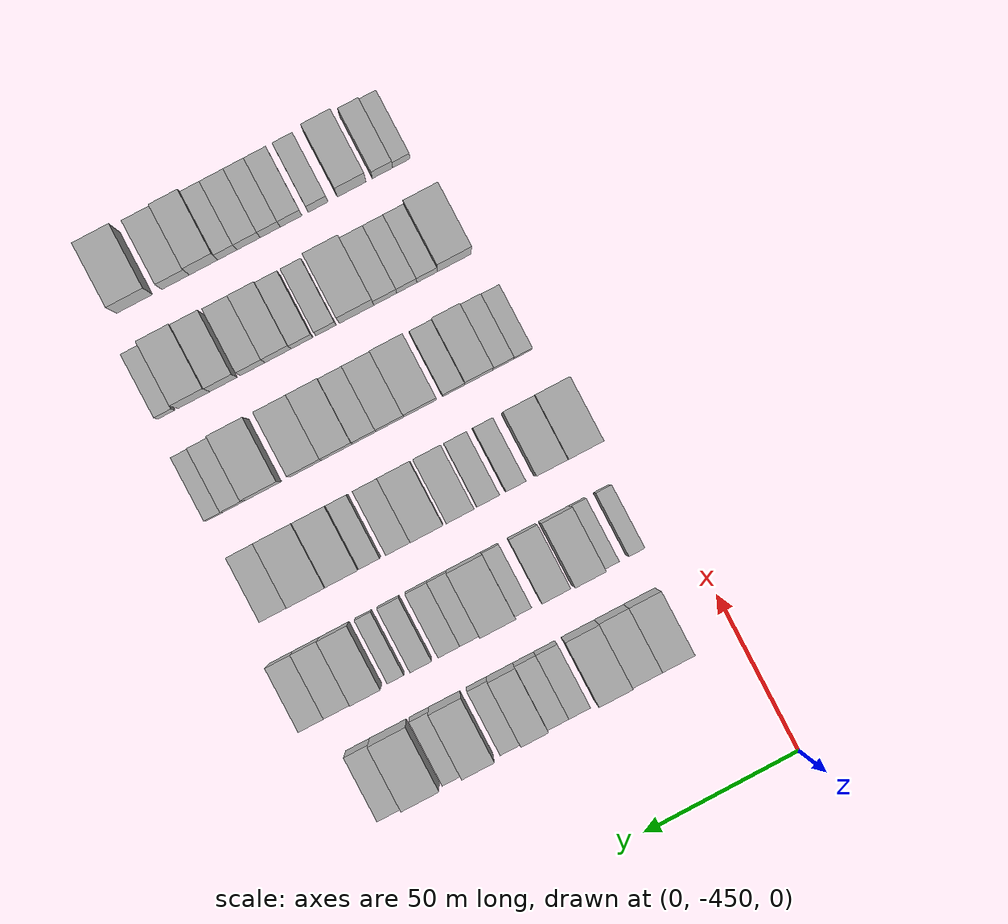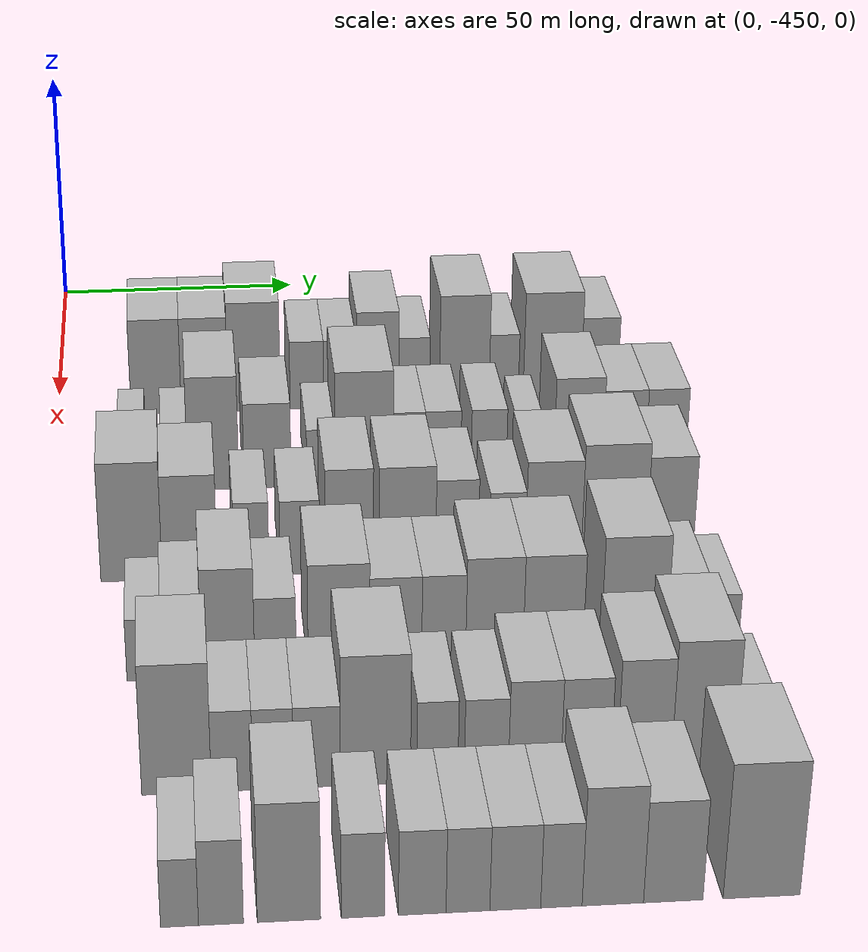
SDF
<sdf version="1.6">
 <world name="default">
  <model name="building_14">
   <static>1</static>
   <pose>50.0000 -430.2669 0 0.000000 0.000000 0.000000</pose>
   <link name="link">
    <pose>0 0 10.50 0 0 0</pose>
    <collision name="collision"><geometry><box><size>20.0000 10.1152 21.0000</size></box></geometry></collision>
    <visual name="visual">
     <cast_shadows>0</cast_shadows>
     <geometry><box><size>20.0000 10.1152 21.0000</size></box></geometry>
     <material>
      <script>
       <uri>model://HANNAS_wall/materials/scripts</uri>
       <uri>model://HANNAS_wall/materials/textures</uri>
       <name>vrc/HANNAS_wall</name>
      </script>
     </material>
    </visual>
   </link>
  </model>
  <model name="building_15">
   <static>1</static>
   <pose>50.0000 -420.4977 0 0.000000 0.000000 0.000000</pose>
   <link name="link">
    <pose>0 0 10.50 0 0 0</pose>
    <collision name="collision"><geometry><box><size>20.0000 9.4233 21.0000</size></box></geometry></collision>
    <visual name="visual">
     <cast_shadows>0</cast_shadows>
     <geometry><box><size>20.0000 9.4233 21.0000</size></box></geometry>
     <material>
      <script>
       <uri>model://HANNAS_wall/materials/scripts</uri>
       <uri>model://HANNAS_wall/materials/textures</uri>
       <name>vrc/HANNAS_wall</name>
      </script>
     </material>
    </visual>
   </link>
  </model>
  <model name="building_16">
   <static>1</static>
   <pose>50.0000 -410.4962 0 0.000000 0.000000 0.000000</pose>
   <link name="link">
    <pose>0 0 12.00 0 0 0</pose>
    <collision name="collision"><geometry><box><size>20.0000 10.5796 24.0000</size></box></geometry></collision>
    <visual name="visual">
     <cast_shadows>0</cast_shadows>
     <geometry><box><size>20.0000 10.5796 24.0000</size></box></geometry>
     <material>
      <script>
       <uri>model://HANNAS_wall/materials/scripts</uri>
       <uri>model://HANNAS_wall/materials/textures</uri>
       <name>vrc/HANNAS_wall</name>
      </script>
     </material>
    </visual>
   </link>
  </model>
  <model name="building_17">
   <static>1</static>
   <pose>50.0000 -399.8020 0 0.000000 0.000000 0.000000</pose>
   <link name="link">
    <pose>0 0 7.50 0 0 0</pose>
    <collision name="collision"><geometry><box><size>20.0000 6.8087 15.0000</size></box></geometry></collision>
    <visual name="visual">
     <cast_shadows>0</cast_shadows>
     <geometry><box><size>20.0000 6.8087 15.0000</size></box></geometry>
     <material>
      <script>
       <uri>model://HANNAS_wall/materials/scripts</uri>
       <uri>model://HANNAS_wall/materials/textures</uri>
       <name>vrc/HANNAS_wall</name>
      </script>
     </material>
    </visual>
   </link>
  </model>
  <model name="building_18">
   <static>1</static>
   <pose>50.0000 -393.0594 0 0.000000 0.000000 0.000000</pose>
   <link name="link">
    <pose>0 0 7.50 0 0 0</pose>
    <collision name="collision"><geometry><box><size>20.0000 6.6766 15.0000</size></box></geometry></collision>
    <visual name="visual">
     <cast_shadows>0</cast_shadows>
     <geometry><box><size>20.0000 6.6766 15.0000</size></box></geometry>
     <material>
      <script>
       <uri>model://HANNAS_wall/materials/scripts</uri>
       <uri>model://HANNAS_wall/materials/textures</uri>
       <name>vrc/HANNAS_wall</name>
      </script>
     </material>
    </visual>
   </link>
  </model>
  <model name="building_19">
   <static>1</static>
   <pose>50.0000 -385.4042 0 0.000000 0.000000 0.000000</pose>
   <link name="link">
    <pose>0 0 10.50 0 0 0</pose>
    <collision name="collision"><geometry><box><size>20.0000 8.6337 21.0000</size></box></geometry></collision>
    <visual name="visual">
     <cast_shadows>0</cast_shadows>
     <geometry><box><size>20.0000 8.6337 21.0000</size></box></geometry>
     <material>
      <script>
       <uri>model://HANNAS_wall/materials/scripts</uri>
       <uri>model://HANNAS_wall/materials/textures</uri>
       <name>vrc/HANNAS_wall</name>
      </script>
     </material>
    </visual>
   </link>
  </model>
  <model name="building_20">
   <static>1</static>
   <pose>50.0000 -377.9456 0 0.000000 0.000000 0.000000</pose>
   <link name="link">
    <pose>0 0 7.50 0 0 0</pose>
    <collision name="collision"><geometry><box><size>20.0000 6.2836 15.0000</size></box></geometry></collision>
    <visual name="visual">
     <cast_shadows>0</cast_shadows>
     <geometry><box><size>20.0000 6.2836 15.0000</size></box></geometry>
     <material>
      <script>
       <uri>model://HANNAS_wall/materials/scripts</uri>
       <uri>model://HANNAS_wall/materials/textures</uri>
       <name>vrc/HANNAS_wall</name>
      </script>
     </material>
    </visual>
   </link>
  </model>
  <model name="building_21">
   <static>1</static>
   <pose>50.0000 -367.7243 0 0.000000 0.000000 0.000000</pose>
   <link name="link">
    <pose>0 0 12.00 0 0 0</pose>
    <collision name="collision"><geometry><box><size>20.0000 10.1591 24.0000</size></box></geometry></collision>
    <visual name="visual">
     <cast_shadows>0</cast_shadows>
     <geometry><box><size>20.0000 10.1591 24.0000</size></box></geometry>
     <material>
      <script>
       <uri>model://HANNAS_wall/materials/scripts</uri>
       <uri>model://HANNAS_wall/materials/textures</uri>
       <name>vrc/HANNAS_wall</name>
      </script>
     </material>
    </visual>
   </link>
  </model>
  <model name="building_22">
   <static>1</static>
   <pose>50.0000 -359.6433 0 0.000000 0.000000 0.000000</pose>
   <link name="link">
    <pose>0 0 7.50 0 0 0</pose>
    <collision name="collision"><geometry><box><size>20.0000 6.0029 15.0000</size></box></geometry></collision>
    <visual name="visual">
     <cast_shadows>0</cast_shadows>
     <geometry><box><size>20.0000 6.0029 15.0000</size></box></geometry>
     <material>
      <script>
       <uri>model://HANNAS_wall/materials/scripts</uri>
       <uri>model://HANNAS_wall/materials/textures</uri>
       <name>vrc/HANNAS_wall</name>
      </script>
     </material>
    </visual>
   </link>
  </model>
  <model name="building_23">
   <static>1</static>
   <pose>50.0000 -349.7255 0 0.000000 0.000000 0.000000</pose>
   <link name="link">
    <pose>0 0 12.00 0 0 0</pose>
    <collision name="collision"><geometry><box><size>20.0000 11.8326 24.0000</size></box></geometry></collision>
    <visual name="visual">
     <cast_shadows>0</cast_shadows>
     <geometry><box><size>20.0000 11.8326 24.0000</size></box></geometry>
     <material>
      <script>
       <uri>model://HANNAS_wall/materials/scripts</uri>
       <uri>model://HANNAS_wall/materials/textures</uri>
       <name>vrc/HANNAS_wall</name>
      </script>
     </material>
    </visual>
   </link>
  </model>
  <model name="building_24">
   <static>1</static>
   <pose>50.0000 -340.0183 0 0.000000 0.000000 0.000000</pose>
   <link name="link">
    <pose>0 0 9.00 0 0 0</pose>
    <collision name="collision"><geometry><box><size>20.0000 7.5818 18.0000</size></box></geometry></collision>
    <visual name="visual">
     <cast_shadows>0</cast_shadows>
     <geometry><box><size>20.0000 7.5818 18.0000</size></box></geometry>
     <material>
      <script>
       <uri>model://HANNAS_wall/materials/scripts</uri>
       <uri>model://HANNAS_wall/materials/textures</uri>
       <name>vrc/HANNAS_wall</name>
      </script>
     </material>
    </visual>
   </link>
  </model>
  <model name="building_134">
   <static>1</static>
   <pose>82.0000 -434.8754 0 0.000000 0.000000 0.000000</pose>
   <link name="link">
    <pose>0 0 6.00 0 0 0</pose>
    <collision name="collision"><geometry><box><size>20.0000 5.0662 12.0000</size></box></geometry></collision>
    <visual name="visual">
     <cast_shadows>0</cast_shadows>
     <geometry><box><size>20.0000 5.0662 12.0000</size></box></geometry>
     <material>
      <script>
       <uri>model://HANNAS_wall/materials/scripts</uri>
       <uri>model://HANNAS_wall/materials/textures</uri>
       <name>vrc/HANNAS_wall</name>
      </script>
     </material>
    </visual>
   </link>
  </model>
  <model name="building_135">
   <static>1</static>
   <pose>82.0000 -426.8634 0 0.000000 0.000000 0.000000</pose>
   <link name="link">
    <pose>0 0 6.00 0 0 0</pose>
    <collision name="collision"><geometry><box><size>20.0000 4.9578 12.0000</size></box></geometry></collision>
    <visual name="visual">
     <cast_shadows>0</cast_shadows>
     <geometry><box><size>20.0000 4.9578 12.0000</size></box></geometry>
     <material>
      <script>
       <uri>model://HANNAS_wall/materials/scripts</uri>
       <uri>model://HANNAS_wall/materials/textures</uri>
       <name>vrc/HANNAS_wall</name>
      </script>
     </material>
    </visual>
   </link>
  </model>
  <model name="building_136">
   <static>1</static>
   <pose>82.0000 -419.5445 0 0.000000 0.000000 0.000000</pose>
   <link name="link">
    <pose>0 0 12.00 0 0 0</pose>
    <collision name="collision"><geometry><box><size>20.0000 9.6800 24.0000</size></box></geometry></collision>
    <visual name="visual">
     <cast_shadows>0</cast_shadows>
     <geometry><box><size>20.0000 9.6800 24.0000</size></box></geometry>
     <material>
      <script>
       <uri>model://HANNAS_wall/materials/scripts</uri>
       <uri>model://HANNAS_wall/materials/textures</uri>
       <name>vrc/HANNAS_wall</name>
      </script>
     </material>
    </visual>
   </link>
  </model>
  <model name="building_137">
   <static>1</static>
   <pose>82.0000 -409.2122 0 0.000000 0.000000 0.000000</pose>
   <link name="link">
    <pose>0 0 9.00 0 0 0</pose>
    <collision name="collision"><geometry><box><size>20.0000 8.9846 18.0000</size></box></geometry></collision>
    <visual name="visual">
     <cast_shadows>0</cast_shadows>
     <geometry><box><size>20.0000 8.9846 18.0000</size></box></geometry>
     <material>
      <script>
       <uri>model://HANNAS_wall/materials/scripts</uri>
       <uri>model://HANNAS_wall/materials/textures</uri>
       <name>vrc/HANNAS_wall</name>
      </script>
     </material>
    </visual>
   </link>
  </model>
  <model name="building_138">
   <static>1</static>
   <pose>82.0000 -399.0163 0 0.000000 0.000000 0.000000</pose>
   <link name="link">
    <pose>0 0 6.00 0 0 0</pose>
    <collision name="collision"><geometry><box><size>20.0000 5.4072 12.0000</size></box></geometry></collision>
    <visual name="visual">
     <cast_shadows>0</cast_shadows>
     <geometry><box><size>20.0000 5.4072 12.0000</size></box></geometry>
     <material>
      <script>
       <uri>model://HANNAS_wall/materials/scripts</uri>
       <uri>model://HANNAS_wall/materials/textures</uri>
       <name>vrc/HANNAS_wall</name>
      </script>
     </material>
    </visual>
   </link>
  </model>
  <model name="building_139">
   <static>1</static>
   <pose>82.0000 -390.7348 0 0.000000 0.000000 0.000000</pose>
   <link name="link">
    <pose>0 0 12.00 0 0 0</pose>
    <collision name="collision"><geometry><box><size>20.0000 11.1557 24.0000</size></box></geometry></collision>
    <visual name="visual">
     <cast_shadows>0</cast_shadows>
     <geometry><box><size>20.0000 11.1557 24.0000</size></box></geometry>
     <material>
      <script>
       <uri>model://HANNAS_wall/materials/scripts</uri>
       <uri>model://HANNAS_wall/materials/textures</uri>
       <name>vrc/HANNAS_wall</name>
      </script>
     </material>
    </visual>
   </link>
  </model>
  <model name="building_140">
   <static>1</static>
   <pose>82.0000 -382.0754 0 0.000000 0.000000 0.000000</pose>
   <link name="link">
    <pose>0 0 7.50 0 0 0</pose>
    <collision name="collision"><geometry><box><size>20.0000 6.1631 15.0000</size></box></geometry></collision>
    <visual name="visual">
     <cast_shadows>0</cast_shadows>
     <geometry><box><size>20.0000 6.1631 15.0000</size></box></geometry>
     <material>
      <script>
       <uri>model://HANNAS_wall/materials/scripts</uri>
       <uri>model://HANNAS_wall/materials/textures</uri>
       <name>vrc/HANNAS_wall</name>
      </script>
     </material>
    </visual>
   </link>
  </model>
  <model name="building_141">
   <static>1</static>
   <pose>82.0000 -375.5727 0 0.000000 0.000000 0.000000</pose>
   <link name="link">
    <pose>0 0 7.50 0 0 0</pose>
    <collision name="collision"><geometry><box><size>20.0000 6.8424 15.0000</size></box></geometry></collision>
    <visual name="visual">
     <cast_shadows>0</cast_shadows>
     <geometry><box><size>20.0000 6.8424 15.0000</size></box></geometry>
     <material>
      <script>
       <uri>model://HANNAS_wall/materials/scripts</uri>
       <uri>model://HANNAS_wall/materials/textures</uri>
       <name>vrc/HANNAS_wall</name>
      </script>
     </material>
    </visual>
   </link>
  </model>
  <model name="building_142">
   <static>1</static>
   <pose>82.0000 -366.7478 0 0.000000 0.000000 0.000000</pose>
   <link name="link">
    <pose>0 0 7.50 0 0 0</pose>
    <collision name="collision"><geometry><box><size>20.0000 6.8074 15.0000</size></box></geometry></collision>
    <visual name="visual">
     <cast_shadows>0</cast_shadows>
     <geometry><box><size>20.0000 6.8074 15.0000</size></box></geometry>
     <material>
      <script>
       <uri>model://HANNAS_wall/materials/scripts</uri>
       <uri>model://HANNAS_wall/materials/textures</uri>
       <name>vrc/HANNAS_wall</name>
      </script>
     </material>
    </visual>
   </link>
  </model>
  <model name="building_143">
   <static>1</static>
   <pose>82.0000 -358.7529 0 0.000000 0.000000 0.000000</pose>
   <link name="link">
    <pose>0 0 6.00 0 0 0</pose>
    <collision name="collision"><geometry><box><size>20.0000 5.1823 12.0000</size></box></geometry></collision>
    <visual name="visual">
     <cast_shadows>0</cast_shadows>
     <geometry><box><size>20.0000 5.1823 12.0000</size></box></geometry>
     <material>
      <script>
       <uri>model://HANNAS_wall/materials/scripts</uri>
       <uri>model://HANNAS_wall/materials/textures</uri>
       <name>vrc/HANNAS_wall</name>
      </script>
     </material>
    </visual>
   </link>
  </model>
  <model name="building_144">
   <static>1</static>
   <pose>82.0000 -349.4194 0 0.000000 0.000000 0.000000</pose>
   <link name="link">
    <pose>0 0 10.50 0 0 0</pose>
    <collision name="collision"><geometry><box><size>20.0000 9.4847 21.0000</size></box></geometry></collision>
    <visual name="visual">
     <cast_shadows>0</cast_shadows>
     <geometry><box><size>20.0000 9.4847 21.0000</size></box></geometry>
     <material>
      <script>
       <uri>model://HANNAS_wall/materials/scripts</uri>
       <uri>model://HANNAS_wall/materials/textures</uri>
       <name>vrc/HANNAS_wall</name>
      </script>
     </material>
    </visual>
   </link>
  </model>
  <model name="building_145">
   <static>1</static>
   <pose>82.0000 -340.5049 0 0.000000 0.000000 0.000000</pose>
   <link name="link">
    <pose>0 0 9.00 0 0 0</pose>
    <collision name="collision"><geometry><box><size>20.0000 8.3443 18.0000</size></box></geometry></collision>
    <visual name="visual">
     <cast_shadows>0</cast_shadows>
     <geometry><box><size>20.0000 8.3443 18.0000</size></box></geometry>
     <material>
      <script>
       <uri>model://HANNAS_wall/materials/scripts</uri>
       <uri>model://HANNAS_wall/materials/textures</uri>
       <name>vrc/HANNAS_wall</name>
      </script>
     </material>
    </visual>
   </link>
  </model>
  <model name="building_146">
   <static>1</static>
   <pose>82.0000 -332.3952 0 0.000000 0.000000 0.000000</pose>
   <link name="link">
    <pose>0 0 9.00 0 0 0</pose>
    <collision name="collision"><geometry><box><size>20.0000 7.8751 18.0000</size></box></geometry></collision>
    <visual name="visual">
     <cast_shadows>0</cast_shadows>
     <geometry><box><size>20.0000 7.8751 18.0000</size></box></geometry>
     <material>
      <script>
       <uri>model://HANNAS_wall/materials/scripts</uri>
       <uri>model://HANNAS_wall/materials/textures</uri>
       <name>vrc/HANNAS_wall</name>
      </script>
     </material>
    </visual>
   </link>
  </model>
  <model name="building_256">
   <static>1</static>
   <pose>114.0000 -434.9927 0 0.000000 0.000000 0.000000</pose>
   <link name="link">
    <pose>0 0 12.00 0 0 0</pose>
    <collision name="collision"><geometry><box><size>20.0000 10.9474 24.0000</size></box></geometry></collision>
    <visual name="visual">
     <cast_shadows>0</cast_shadows>
     <geometry><box><size>20.0000 10.9474 24.0000</size></box></geometry>
     <material>
      <script>
       <uri>model://HANNAS_wall/materials/scripts</uri>
       <uri>model://HANNAS_wall/materials/textures</uri>
       <name>vrc/HANNAS_wall</name>
      </script>
     </material>
    </visual>
   </link>
  </model>
  <model name="building_257">
   <static>1</static>
   <pose>114.0000 -424.5953 0 0.000000 0.000000 0.000000</pose>
   <link name="link">
    <pose>0 0 10.50 0 0 0</pose>
    <collision name="collision"><geometry><box><size>20.0000 9.8475 21.0000</size></box></geometry></collision>
    <visual name="visual">
     <cast_shadows>0</cast_shadows>
     <geometry><box><size>20.0000 9.8475 21.0000</size></box></geometry>
     <material>
      <script>
       <uri>model://HANNAS_wall/materials/scripts</uri>
       <uri>model://HANNAS_wall/materials/textures</uri>
       <name>vrc/HANNAS_wall</name>
      </script>
     </material>
    </visual>
   </link>
  </model>
  <model name="building_258">
   <static>1</static>
   <pose>114.0000 -413.5283 0 0.000000 0.000000 0.000000</pose>
   <link name="link">
    <pose>0 0 7.50 0 0 0</pose>
    <collision name="collision"><geometry><box><size>20.0000 6.2865 15.0000</size></box></geometry></collision>
    <visual name="visual">
     <cast_shadows>0</cast_shadows>
     <geometry><box><size>20.0000 6.2865 15.0000</size></box></geometry>
     <material>
      <script>
       <uri>model://HANNAS_wall/materials/scripts</uri>
       <uri>model://HANNAS_wall/materials/textures</uri>
       <name>vrc/HANNAS_wall</name>
      </script>
     </material>
    </visual>
   </link>
  </model>
  <model name="building_259">
   <static>1</static>
   <pose>114.0000 -404.8251 0 0.000000 0.000000 0.000000</pose>
   <link name="link">
    <pose>0 0 7.50 0 0 0</pose>
    <collision name="collision"><geometry><box><size>20.0000 7.1200 15.0000</size></box></geometry></collision>
    <visual name="visual">
     <cast_shadows>0</cast_shadows>
     <geometry><box><size>20.0000 7.1200 15.0000</size></box></geometry>
     <material>
      <script>
       <uri>model://HANNAS_wall/materials/scripts</uri>
       <uri>model://HANNAS_wall/materials/textures</uri>
       <name>vrc/HANNAS_wall</name>
      </script>
     </material>
    </visual>
   </link>
  </model>
  <model name="building_260">
   <static>1</static>
   <pose>114.0000 -395.9282 0 0.000000 0.000000 0.000000</pose>
   <link name="link">
    <pose>0 0 10.50 0 0 0</pose>
    <collision name="collision"><geometry><box><size>20.0000 8.6737 21.0000</size></box></geometry></collision>
    <visual name="visual">
     <cast_shadows>0</cast_shadows>
     <geometry><box><size>20.0000 8.6737 21.0000</size></box></geometry>
     <material>
      <script>
       <uri>model://HANNAS_wall/materials/scripts</uri>
       <uri>model://HANNAS_wall/materials/textures</uri>
       <name>vrc/HANNAS_wall</name>
      </script>
     </material>
    </visual>
   </link>
  </model>
  <model name="building_261">
   <static>1</static>
   <pose>114.0000 -385.4736 0 0.000000 0.000000 0.000000</pose>
   <link name="link">
    <pose>0 0 10.50 0 0 0</pose>
    <collision name="collision"><geometry><box><size>20.0000 10.2356 21.0000</size></box></geometry></collision>
    <visual name="visual">
     <cast_shadows>0</cast_shadows>
     <geometry><box><size>20.0000 10.2356 21.0000</size></box></geometry>
     <material>
      <script>
       <uri>model://HANNAS_wall/materials/scripts</uri>
       <uri>model://HANNAS_wall/materials/textures</uri>
       <name>vrc/HANNAS_wall</name>
      </script>
     </material>
    </visual>
   </link>
  </model>
  <model name="building_262">
   <static>1</static>
   <pose>114.0000 -376.5117 0 0.000000 0.000000 0.000000</pose>
   <link name="link">
    <pose>0 0 9.00 0 0 0</pose>
    <collision name="collision"><geometry><box><size>20.0000 7.6883 18.0000</size></box></geometry></collision>
    <visual name="visual">
     <cast_shadows>0</cast_shadows>
     <geometry><box><size>20.0000 7.6883 18.0000</size></box></geometry>
     <material>
      <script>
       <uri>model://HANNAS_wall/materials/scripts</uri>
       <uri>model://HANNAS_wall/materials/textures</uri>
       <name>vrc/HANNAS_wall</name>
      </script>
     </material>
    </visual>
   </link>
  </model>
  <model name="building_263">
   <static>1</static>
   <pose>114.0000 -367.3783 0 0.000000 0.000000 0.000000</pose>
   <link name="link">
    <pose>0 0 7.50 0 0 0</pose>
    <collision name="collision"><geometry><box><size>20.0000 6.5784 15.0000</size></box></geometry></collision>
    <visual name="visual">
     <cast_shadows>0</cast_shadows>
     <geometry><box><size>20.0000 6.5784 15.0000</size></box></geometry>
     <material>
      <script>
       <uri>model://HANNAS_wall/materials/scripts</uri>
       <uri>model://HANNAS_wall/materials/textures</uri>
       <name>vrc/HANNAS_wall</name>
      </script>
     </material>
    </visual>
   </link>
  </model>
  <model name="building_264">
   <static>1</static>
   <pose>114.0000 -358.9835 0 0.000000 0.000000 0.000000</pose>
   <link name="link">
    <pose>0 0 10.50 0 0 0</pose>
    <collision name="collision"><geometry><box><size>20.0000 10.2113 21.0000</size></box></geometry></collision>
    <visual name="visual">
     <cast_shadows>0</cast_shadows>
     <geometry><box><size>20.0000 10.2113 21.0000</size></box></geometry>
     <material>
      <script>
       <uri>model://HANNAS_wall/materials/scripts</uri>
       <uri>model://HANNAS_wall/materials/textures</uri>
       <name>vrc/HANNAS_wall</name>
      </script>
     </material>
    </visual>
   </link>
  </model>
  <model name="building_265">
   <static>1</static>
   <pose>114.0000 -347.9531 0 0.000000 0.000000 0.000000</pose>
   <link name="link">
    <pose>0 0 12.00 0 0 0</pose>
    <collision name="collision"><geometry><box><size>20.0000 11.8495 24.0000</size></box></geometry></collision>
    <visual name="visual">
     <cast_shadows>0</cast_shadows>
     <geometry><box><size>20.0000 11.8495 24.0000</size></box></geometry>
     <material>
      <script>
       <uri>model://HANNAS_wall/materials/scripts</uri>
       <uri>model://HANNAS_wall/materials/textures</uri>
       <name>vrc/HANNAS_wall</name>
      </script>
     </material>
    </visual>
   </link>
  </model>
  <model name="building_266">
   <static>1</static>
   <pose>114.0000 -337.7043 0 0.000000 0.000000 0.000000</pose>
   <link name="link">
    <pose>0 0 10.50 0 0 0</pose>
    <collision name="collision"><geometry><box><size>20.0000 8.6480 21.0000</size></box></geometry></collision>
    <visual name="visual">
     <cast_shadows>0</cast_shadows>
     <geometry><box><size>20.0000 8.6480 21.0000</size></box></geometry>
     <material>
      <script>
       <uri>model://HANNAS_wall/materials/scripts</uri>
       <uri>model://HANNAS_wall/materials/textures</uri>
       <name>vrc/HANNAS_wall</name>
      </script>
     </material>
    </visual>
   </link>
  </model>
  <model name="building_373">
   <static>1</static>
   <pose>146.0000 -432.7144 0 0.000000 0.000000 0.000000</pose>
   <link name="link">
    <pose>0 0 6.00 0 0 0</pose>
    <collision name="collision"><geometry><box><size>20.0000 5.8718 12.0000</size></box></geometry></collision>
    <visual name="visual">
     <cast_shadows>0</cast_shadows>
     <geometry><box><size>20.0000 5.8718 12.0000</size></box></geometry>
     <material>
      <script>
       <uri>model://HANNAS_wall/materials/scripts</uri>
       <uri>model://HANNAS_wall/materials/textures</uri>
       <name>vrc/HANNAS_wall</name>
      </script>
     </material>
    </visual>
   </link>
  </model>
  <model name="building_374">
   <static>1</static>
   <pose>146.0000 -426.4711 0 0.000000 0.000000 0.000000</pose>
   <link name="link">
    <pose>0 0 7.50 0 0 0</pose>
    <collision name="collision"><geometry><box><size>20.0000 6.6147 15.0000</size></box></geometry></collision>
    <visual name="visual">
     <cast_shadows>0</cast_shadows>
     <geometry><box><size>20.0000 6.6147 15.0000</size></box></geometry>
     <material>
      <script>
       <uri>model://HANNAS_wall/materials/scripts</uri>
       <uri>model://HANNAS_wall/materials/textures</uri>
       <name>vrc/HANNAS_wall</name>
      </script>
     </material>
    </visual>
   </link>
  </model>
  <model name="building_375">
   <static>1</static>
   <pose>146.0000 -418.7047 0 0.000000 0.000000 0.000000</pose>
   <link name="link">
    <pose>0 0 10.50 0 0 0</pose>
    <collision name="collision"><geometry><box><size>20.0000 8.9180 21.0000</size></box></geometry></collision>
    <visual name="visual">
     <cast_shadows>0</cast_shadows>
     <geometry><box><size>20.0000 8.9180 21.0000</size></box></geometry>
     <material>
      <script>
       <uri>model://HANNAS_wall/materials/scripts</uri>
       <uri>model://HANNAS_wall/materials/textures</uri>
       <name>vrc/HANNAS_wall</name>
      </script>
     </material>
    </visual>
   </link>
  </model>
  <model name="building_376">
   <static>1</static>
   <pose>146.0000 -410.7559 0 0.000000 0.000000 0.000000</pose>
   <link name="link">
    <pose>0 0 7.50 0 0 0</pose>
    <collision name="collision"><geometry><box><size>20.0000 6.9795 15.0000</size></box></geometry></collision>
    <visual name="visual">
     <cast_shadows>0</cast_shadows>
     <geometry><box><size>20.0000 6.9795 15.0000</size></box></geometry>
     <material>
      <script>
       <uri>model://HANNAS_wall/materials/scripts</uri>
       <uri>model://HANNAS_wall/materials/textures</uri>
       <name>vrc/HANNAS_wall</name>
      </script>
     </material>
    </visual>
   </link>
  </model>
  <model name="building_377">
   <static>1</static>
   <pose>146.0000 -400.0773 0 0.000000 0.000000 0.000000</pose>
   <link name="link">
    <pose>0 0 10.50 0 0 0</pose>
    <collision name="collision"><geometry><box><size>20.0000 10.3778 21.0000</size></box></geometry></collision>
    <visual name="visual">
     <cast_shadows>0</cast_shadows>
     <geometry><box><size>20.0000 10.3778 21.0000</size></box></geometry>
     <material>
      <script>
       <uri>model://HANNAS_wall/materials/scripts</uri>
       <uri>model://HANNAS_wall/materials/textures</uri>
       <name>vrc/HANNAS_wall</name>
      </script>
     </material>
    </visual>
   </link>
  </model>
  <model name="building_378">
   <static>1</static>
   <pose>146.0000 -390.5054 0 0.000000 0.000000 0.000000</pose>
   <link name="link">
    <pose>0 0 9.00 0 0 0</pose>
    <collision name="collision"><geometry><box><size>20.0000 8.7661 18.0000</size></box></geometry></collision>
    <visual name="visual">
     <cast_shadows>0</cast_shadows>
     <geometry><box><size>20.0000 8.7661 18.0000</size></box></geometry>
     <material>
      <script>
       <uri>model://HANNAS_wall/materials/scripts</uri>
       <uri>model://HANNAS_wall/materials/textures</uri>
       <name>vrc/HANNAS_wall</name>
      </script>
     </material>
    </visual>
   </link>
  </model>
  <model name="building_379">
   <static>1</static>
   <pose>146.0000 -382.4010 0 0.000000 0.000000 0.000000</pose>
   <link name="link">
    <pose>0 0 9.00 0 0 0</pose>
    <collision name="collision"><geometry><box><size>20.0000 7.4425 18.0000</size></box></geometry></collision>
    <visual name="visual">
     <cast_shadows>0</cast_shadows>
     <geometry><box><size>20.0000 7.4425 18.0000</size></box></geometry>
     <material>
      <script>
       <uri>model://HANNAS_wall/materials/scripts</uri>
       <uri>model://HANNAS_wall/materials/textures</uri>
       <name>vrc/HANNAS_wall</name>
      </script>
     </material>
    </visual>
   </link>
  </model>
  <model name="building_380">
   <static>1</static>
   <pose>146.0000 -373.8051 0 0.000000 0.000000 0.000000</pose>
   <link name="link">
    <pose>0 0 10.50 0 0 0</pose>
    <collision name="collision"><geometry><box><size>20.0000 9.7493 21.0000</size></box></geometry></collision>
    <visual name="visual">
     <cast_shadows>0</cast_shadows>
     <geometry><box><size>20.0000 9.7493 21.0000</size></box></geometry>
     <material>
      <script>
       <uri>model://HANNAS_wall/materials/scripts</uri>
       <uri>model://HANNAS_wall/materials/textures</uri>
       <name>vrc/HANNAS_wall</name>
      </script>
     </material>
    </visual>
   </link>
  </model>
  <model name="building_381">
   <static>1</static>
   <pose>146.0000 -363.8149 0 0.000000 0.000000 0.000000</pose>
   <link name="link">
    <pose>0 0 10.50 0 0 0</pose>
    <collision name="collision"><geometry><box><size>20.0000 10.2312 21.0000</size></box></geometry></collision>
    <visual name="visual">
     <cast_shadows>0</cast_shadows>
     <geometry><box><size>20.0000 10.2312 21.0000</size></box></geometry>
     <material>
      <script>
       <uri>model://HANNAS_wall/materials/scripts</uri>
       <uri>model://HANNAS_wall/materials/textures</uri>
       <name>vrc/HANNAS_wall</name>
      </script>
     </material>
    </visual>
   </link>
  </model>
  <model name="building_382">
   <static>1</static>
   <pose>146.0000 -350.0636 0 0.000000 0.000000 0.000000</pose>
   <link name="link">
    <pose>0 0 12.00 0 0 0</pose>
    <collision name="collision"><geometry><box><size>20.0000 11.2715 24.0000</size></box></geometry></collision>
    <visual name="visual">
     <cast_shadows>0</cast_shadows>
     <geometry><box><size>20.0000 11.2715 24.0000</size></box></geometry>
     <material>
      <script>
       <uri>model://HANNAS_wall/materials/scripts</uri>
       <uri>model://HANNAS_wall/materials/textures</uri>
       <name>vrc/HANNAS_wall</name>
      </script>
     </material>
    </visual>
   </link>
  </model>
  <model name="building_383">
   <static>1</static>
   <pose>146.0000 -340.8828 0 0.000000 0.000000 0.000000</pose>
   <link name="link">
    <pose>0 0 7.50 0 0 0</pose>
    <collision name="collision"><geometry><box><size>20.0000 7.0901 15.0000</size></box></geometry></collision>
    <visual name="visual">
     <cast_shadows>0</cast_shadows>
     <geometry><box><size>20.0000 7.0901 15.0000</size></box></geometry>
     <material>
      <script>
       <uri>model://HANNAS_wall/materials/scripts</uri>
       <uri>model://HANNAS_wall/materials/textures</uri>
       <name>vrc/HANNAS_wall</name>
      </script>
     </material>
    </visual>
   </link>
  </model>
  <model name="building_384">
   <static>1</static>
   <pose>146.0000 -334.6702 0 0.000000 0.000000 0.000000</pose>
   <link name="link">
    <pose>0 0 6.00 0 0 0</pose>
    <collision name="collision"><geometry><box><size>20.0000 5.3350 12.0000</size></box></geometry></collision>
    <visual name="visual">
     <cast_shadows>0</cast_shadows>
     <geometry><box><size>20.0000 5.3350 12.0000</size></box></geometry>
     <material>
      <script>
       <uri>model://HANNAS_wall/materials/scripts</uri>
       <uri>model://HANNAS_wall/materials/textures</uri>
       <name>vrc/HANNAS_wall</name>
      </script>
     </material>
    </visual>
   </link>
  </model>
  <model name="building_490">
   <static>1</static>
   <pose>178.0000 -427.7677 0 0.000000 0.000000 0.000000</pose>
   <link name="link">
    <pose>0 0 12.00 0 0 0</pose>
    <collision name="collision"><geometry><box><size>20.0000 10.8464 24.0000</size></box></geometry></collision>
    <visual name="visual">
     <cast_shadows>0</cast_shadows>
     <geometry><box><size>20.0000 10.8464 24.0000</size></box></geometry>
     <material>
      <script>
       <uri>model://HANNAS_wall/materials/scripts</uri>
       <uri>model://HANNAS_wall/materials/textures</uri>
       <name>vrc/HANNAS_wall</name>
      </script>
     </material>
    </visual>
   </link>
  </model>
  <model name="building_491">
   <static>1</static>
   <pose>178.0000 -419.1141 0 0.000000 0.000000 0.000000</pose>
   <link name="link">
    <pose>0 0 7.50 0 0 0</pose>
    <collision name="collision"><geometry><box><size>20.0000 6.4608 15.0000</size></box></geometry></collision>
    <visual name="visual">
     <cast_shadows>0</cast_shadows>
     <geometry><box><size>20.0000 6.4608 15.0000</size></box></geometry>
     <material>
      <script>
       <uri>model://HANNAS_wall/materials/scripts</uri>
       <uri>model://HANNAS_wall/materials/textures</uri>
       <name>vrc/HANNAS_wall</name>
      </script>
     </material>
    </visual>
   </link>
  </model>
  <model name="building_492">
   <static>1</static>
   <pose>178.0000 -412.6805 0 0.000000 0.000000 0.000000</pose>
   <link name="link">
    <pose>0 0 7.50 0 0 0</pose>
    <collision name="collision"><geometry><box><size>20.0000 6.4064 15.0000</size></box></geometry></collision>
    <visual name="visual">
     <cast_shadows>0</cast_shadows>
     <geometry><box><size>20.0000 6.4064 15.0000</size></box></geometry>
     <material>
      <script>
       <uri>model://HANNAS_wall/materials/scripts</uri>
       <uri>model://HANNAS_wall/materials/textures</uri>
       <name>vrc/HANNAS_wall</name>
      </script>
     </material>
    </visual>
   </link>
  </model>
  <model name="building_493">
   <static>1</static>
   <pose>178.0000 -405.7982 0 0.000000 0.000000 0.000000</pose>
   <link name="link">
    <pose>0 0 7.50 0 0 0</pose>
    <collision name="collision"><geometry><box><size>20.0000 7.3584 15.0000</size></box></geometry></collision>
    <visual name="visual">
     <cast_shadows>0</cast_shadows>
     <geometry><box><size>20.0000 7.3584 15.0000</size></box></geometry>
     <material>
      <script>
       <uri>model://HANNAS_wall/materials/scripts</uri>
       <uri>model://HANNAS_wall/materials/textures</uri>
       <name>vrc/HANNAS_wall</name>
      </script>
     </material>
    </visual>
   </link>
  </model>
  <model name="building_494">
   <static>1</static>
   <pose>178.0000 -396.6142 0 0.000000 0.000000 0.000000</pose>
   <link name="link">
    <pose>0 0 12.00 0 0 0</pose>
    <collision name="collision"><geometry><box><size>20.0000 11.0094 24.0000</size></box></geometry></collision>
    <visual name="visual">
     <cast_shadows>0</cast_shadows>
     <geometry><box><size>20.0000 11.0094 24.0000</size></box></geometry>
     <material>
      <script>
       <uri>model://HANNAS_wall/materials/scripts</uri>
       <uri>model://HANNAS_wall/materials/textures</uri>
       <name>vrc/HANNAS_wall</name>
      </script>
     </material>
    </visual>
   </link>
  </model>
  <model name="building_495">
   <static>1</static>
   <pose>178.0000 -386.8701 0 0.000000 0.000000 0.000000</pose>
   <link name="link">
    <pose>0 0 7.50 0 0 0</pose>
    <collision name="collision"><geometry><box><size>20.0000 6.4789 15.0000</size></box></geometry></collision>
    <visual name="visual">
     <cast_shadows>0</cast_shadows>
     <geometry><box><size>20.0000 6.4789 15.0000</size></box></geometry>
     <material>
      <script>
       <uri>model://HANNAS_wall/materials/scripts</uri>
       <uri>model://HANNAS_wall/materials/textures</uri>
       <name>vrc/HANNAS_wall</name>
      </script>
     </material>
    </visual>
   </link>
  </model>
  <model name="building_496">
   <static>1</static>
   <pose>178.0000 -379.1300 0 0.000000 0.000000 0.000000</pose>
   <link name="link">
    <pose>0 0 7.50 0 0 0</pose>
    <collision name="collision"><geometry><box><size>20.0000 7.0013 15.0000</size></box></geometry></collision>
    <visual name="visual">
     <cast_shadows>0</cast_shadows>
     <geometry><box><size>20.0000 7.0013 15.0000</size></box></geometry>
     <material>
      <script>
       <uri>model://HANNAS_wall/materials/scripts</uri>
       <uri>model://HANNAS_wall/materials/textures</uri>
       <name>vrc/HANNAS_wall</name>
      </script>
     </material>
    </visual>
   </link>
  </model>
  <model name="building_497">
   <static>1</static>
   <pose>178.0000 -371.4584 0 0.000000 0.000000 0.000000</pose>
   <link name="link">
    <pose>0 0 9.00 0 0 0</pose>
    <collision name="collision"><geometry><box><size>20.0000 8.3419 18.0000</size></box></geometry></collision>
    <visual name="visual">
     <cast_shadows>0</cast_shadows>
     <geometry><box><size>20.0000 8.3419 18.0000</size></box></geometry>
     <material>
      <script>
       <uri>model://HANNAS_wall/materials/scripts</uri>
       <uri>model://HANNAS_wall/materials/textures</uri>
       <name>vrc/HANNAS_wall</name>
      </script>
     </material>
    </visual>
   </link>
  </model>
  <model name="building_498">
   <static>1</static>
   <pose>178.0000 -363.3282 0 0.000000 0.000000 0.000000</pose>
   <link name="link">
    <pose>0 0 9.00 0 0 0</pose>
    <collision name="collision"><geometry><box><size>20.0000 7.9185 18.0000</size></box></geometry></collision>
    <visual name="visual">
     <cast_shadows>0</cast_shadows>
     <geometry><box><size>20.0000 7.9185 18.0000</size></box></geometry>
     <material>
      <script>
       <uri>model://HANNAS_wall/materials/scripts</uri>
       <uri>model://HANNAS_wall/materials/textures</uri>
       <name>vrc/HANNAS_wall</name>
      </script>
     </material>
    </visual>
   </link>
  </model>
  <model name="building_499">
   <static>1</static>
   <pose>178.0000 -354.0328 0 0.000000 0.000000 0.000000</pose>
   <link name="link">
    <pose>0 0 10.50 0 0 0</pose>
    <collision name="collision"><geometry><box><size>20.0000 8.6722 21.0000</size></box></geometry></collision>
    <visual name="visual">
     <cast_shadows>0</cast_shadows>
     <geometry><box><size>20.0000 8.6722 21.0000</size></box></geometry>
     <material>
      <script>
       <uri>model://HANNAS_wall/materials/scripts</uri>
       <uri>model://HANNAS_wall/materials/textures</uri>
       <name>vrc/HANNAS_wall</name>
      </script>
     </material>
    </visual>
   </link>
  </model>
  <model name="building_500">
   <static>1</static>
   <pose>178.0000 -344.5791 0 0.000000 0.000000 0.000000</pose>
   <link name="link">
    <pose>0 0 12.00 0 0 0</pose>
    <collision name="collision"><geometry><box><size>20.0000 10.2351 24.0000</size></box></geometry></collision>
    <visual name="visual">
     <cast_shadows>0</cast_shadows>
     <geometry><box><size>20.0000 10.2351 24.0000</size></box></geometry>
     <material>
      <script>
       <uri>model://HANNAS_wall/materials/scripts</uri>
       <uri>model://HANNAS_wall/materials/textures</uri>
       <name>vrc/HANNAS_wall</name>
      </script>
     </material>
    </visual>
   </link>
  </model>
  <model name="building_501">
   <static>1</static>
   <pose>178.0000 -335.7610 0 0.000000 0.000000 0.000000</pose>
   <link name="link">
    <pose>0 0 6.00 0 0 0</pose>
    <collision name="collision"><geometry><box><size>20.0000 5.4011 12.0000</size></box></geometry></collision>
    <visual name="visual">
     <cast_shadows>0</cast_shadows>
     <geometry><box><size>20.0000 5.4011 12.0000</size></box></geometry>
     <material>
      <script>
       <uri>model://HANNAS_wall/materials/scripts</uri>
       <uri>model://HANNAS_wall/materials/textures</uri>
       <name>vrc/HANNAS_wall</name>
      </script>
     </material>
    </visual>
   </link>
  </model>
  <model name="building_604">
   <static>1</static>
   <pose>210.0000 -427.7475 0 0.000000 0.000000 0.000000</pose>
   <link name="link">
    <pose>0 0 6.00 0 0 0</pose>
    <collision name="collision"><geometry><box><size>20.0000 5.4856 12.0000</size></box></geometry></collision>
    <visual name="visual">
     <cast_shadows>0</cast_shadows>
     <geometry><box><size>20.0000 5.4856 12.0000</size></box></geometry>
     <material>
      <script>
       <uri>model://HANNAS_wall/materials/scripts</uri>
       <uri>model://HANNAS_wall/materials/textures</uri>
       <name>vrc/HANNAS_wall</name>
      </script>
     </material>
    </visual>
   </link>
  </model>
  <model name="building_605">
   <static>1</static>
   <pose>210.0000 -421.7528 0 0.000000 0.000000 0.000000</pose>
   <link name="link">
    <pose>0 0 7.50 0 0 0</pose>
    <collision name="collision"><geometry><box><size>20.0000 6.5038 15.0000</size></box></geometry></collision>
    <visual name="visual">
     <cast_shadows>0</cast_shadows>
     <geometry><box><size>20.0000 6.5038 15.0000</size></box></geometry>
     <material>
      <script>
       <uri>model://HANNAS_wall/materials/scripts</uri>
       <uri>model://HANNAS_wall/materials/textures</uri>
       <name>vrc/HANNAS_wall</name>
      </script>
     </material>
    </visual>
   </link>
  </model>
  <model name="building_606">
   <static>1</static>
   <pose>210.0000 -411.8963 0 0.000000 0.000000 0.000000</pose>
   <link name="link">
    <pose>0 0 10.50 0 0 0</pose>
    <collision name="collision"><geometry><box><size>20.0000 9.2093 21.0000</size></box></geometry></collision>
    <visual name="visual">
     <cast_shadows>0</cast_shadows>
     <geometry><box><size>20.0000 9.2093 21.0000</size></box></geometry>
     <material>
      <script>
       <uri>model://HANNAS_wall/materials/scripts</uri>
       <uri>model://HANNAS_wall/materials/textures</uri>
       <name>vrc/HANNAS_wall</name>
      </script>
     </material>
    </visual>
   </link>
  </model>
  <model name="building_607">
   <static>1</static>
   <pose>210.0000 -401.1268 0 0.000000 0.000000 0.000000</pose>
   <link name="link">
    <pose>0 0 7.50 0 0 0</pose>
    <collision name="collision"><geometry><box><size>20.0000 6.3296 15.0000</size></box></geometry></collision>
    <visual name="visual">
     <cast_shadows>0</cast_shadows>
     <geometry><box><size>20.0000 6.3296 15.0000</size></box></geometry>
     <material>
      <script>
       <uri>model://HANNAS_wall/materials/scripts</uri>
       <uri>model://HANNAS_wall/materials/textures</uri>
       <name>vrc/HANNAS_wall</name>
      </script>
     </material>
    </visual>
   </link>
  </model>
  <model name="building_608">
   <static>1</static>
   <pose>210.0000 -392.4751 0 0.000000 0.000000 0.000000</pose>
   <link name="link">
    <pose>0 0 7.50 0 0 0</pose>
    <collision name="collision"><geometry><box><size>20.0000 6.9739 15.0000</size></box></geometry></collision>
    <visual name="visual">
     <cast_shadows>0</cast_shadows>
     <geometry><box><size>20.0000 6.9739 15.0000</size></box></geometry>
     <material>
      <script>
       <uri>model://HANNAS_wall/materials/scripts</uri>
       <uri>model://HANNAS_wall/materials/textures</uri>
       <name>vrc/HANNAS_wall</name>
      </script>
     </material>
    </visual>
   </link>
  </model>
  <model name="building_609">
   <static>1</static>
   <pose>210.0000 -385.7767 0 0.000000 0.000000 0.000000</pose>
   <link name="link">
    <pose>0 0 7.50 0 0 0</pose>
    <collision name="collision"><geometry><box><size>20.0000 6.4228 15.0000</size></box></geometry></collision>
    <visual name="visual">
     <cast_shadows>0</cast_shadows>
     <geometry><box><size>20.0000 6.4228 15.0000</size></box></geometry>
     <material>
      <script>
       <uri>model://HANNAS_wall/materials/scripts</uri>
       <uri>model://HANNAS_wall/materials/textures</uri>
       <name>vrc/HANNAS_wall</name>
      </script>
     </material>
    </visual>
   </link>
  </model>
  <model name="building_610">
   <static>1</static>
   <pose>210.0000 -378.8267 0 0.000000 0.000000 0.000000</pose>
   <link name="link">
    <pose>0 0 7.50 0 0 0</pose>
    <collision name="collision"><geometry><box><size>20.0000 7.4772 15.0000</size></box></geometry></collision>
    <visual name="visual">
     <cast_shadows>0</cast_shadows>
     <geometry><box><size>20.0000 7.4772 15.0000</size></box></geometry>
     <material>
      <script>
       <uri>model://HANNAS_wall/materials/scripts</uri>
       <uri>model://HANNAS_wall/materials/textures</uri>
       <name>vrc/HANNAS_wall</name>
      </script>
     </material>
    </visual>
   </link>
  </model>
  <model name="building_611">
   <static>1</static>
   <pose>210.0000 -372.0308 0 0.000000 0.000000 0.000000</pose>
   <link name="link">
    <pose>0 0 7.50 0 0 0</pose>
    <collision name="collision"><geometry><box><size>20.0000 6.1146 15.0000</size></box></geometry></collision>
    <visual name="visual">
     <cast_shadows>0</cast_shadows>
     <geometry><box><size>20.0000 6.1146 15.0000</size></box></geometry>
     <material>
      <script>
       <uri>model://HANNAS_wall/materials/scripts</uri>
       <uri>model://HANNAS_wall/materials/textures</uri>
       <name>vrc/HANNAS_wall</name>
      </script>
     </material>
    </visual>
   </link>
  </model>
  <model name="building_612">
   <static>1</static>
   <pose>210.0000 -364.4311 0 0.000000 0.000000 0.000000</pose>
   <link name="link">
    <pose>0 0 10.50 0 0 0</pose>
    <collision name="collision"><geometry><box><size>20.0000 9.0848 21.0000</size></box></geometry></collision>
    <visual name="visual">
     <cast_shadows>0</cast_shadows>
     <geometry><box><size>20.0000 9.0848 21.0000</size></box></geometry>
     <material>
      <script>
       <uri>model://HANNAS_wall/materials/scripts</uri>
       <uri>model://HANNAS_wall/materials/textures</uri>
       <name>vrc/HANNAS_wall</name>
      </script>
     </material>
    </visual>
   </link>
  </model>
  <model name="building_613">
   <static>1</static>
   <pose>210.0000 -355.4784 0 0.000000 0.000000 0.000000</pose>
   <link name="link">
    <pose>0 0 9.00 0 0 0</pose>
    <collision name="collision"><geometry><box><size>20.0000 8.8207 18.0000</size></box></geometry></collision>
    <visual name="visual">
     <cast_shadows>0</cast_shadows>
     <geometry><box><size>20.0000 8.8207 18.0000</size></box></geometry>
     <material>
      <script>
       <uri>model://HANNAS_wall/materials/scripts</uri>
       <uri>model://HANNAS_wall/materials/textures</uri>
       <name>vrc/HANNAS_wall</name>
      </script>
     </material>
    </visual>
   </link>
  </model>
  <model name="building_614">
   <static>1</static>
   <pose>210.0000 -342.3257 0 0.000000 0.000000 0.000000</pose>
   <link name="link">
    <pose>0 0 12.00 0 0 0</pose>
    <collision name="collision"><geometry><box><size>20.0000 11.4847 24.0000</size></box></geometry></collision>
    <visual name="visual">
     <cast_shadows>0</cast_shadows>
     <geometry><box><size>20.0000 11.4847 24.0000</size></box></geometry>
     <material>
      <script>
       <uri>model://HANNAS_wall/materials/scripts</uri>
       <uri>model://HANNAS_wall/materials/textures</uri>
       <name>vrc/HANNAS_wall</name>
      </script>
     </material>
    </visual>
   </link>
  </model>
 </world>
</sdf>
